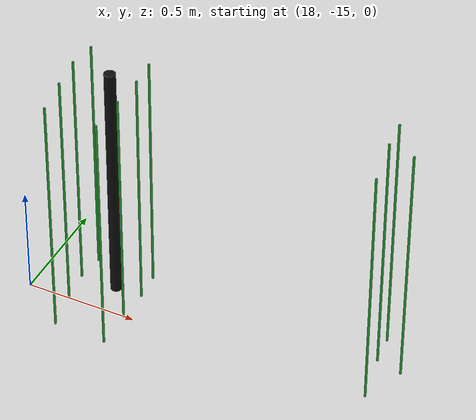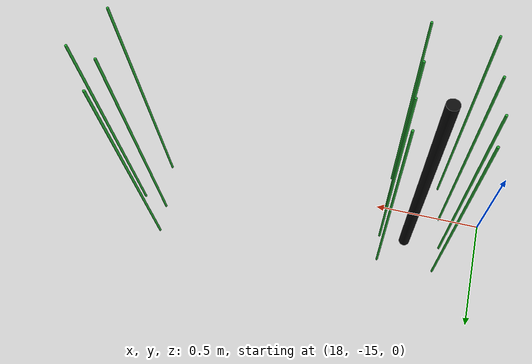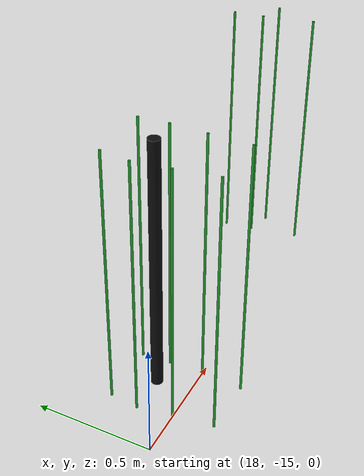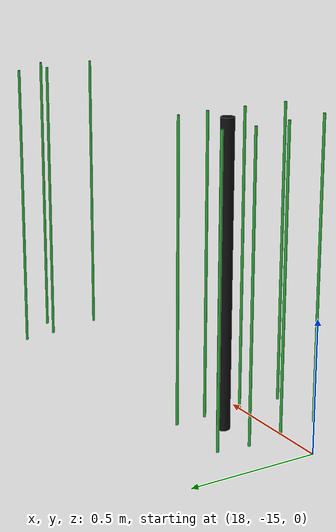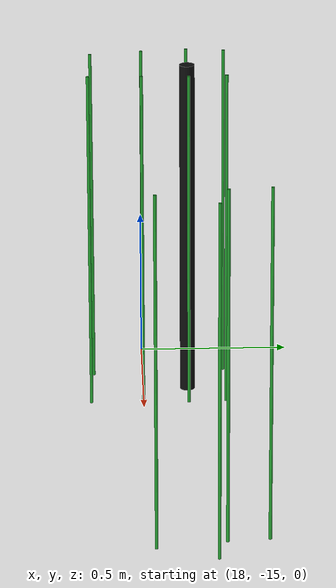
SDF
<sdf version="1.6">
 <world name="default">
  <model name="pole_19">
   <static>1</static>
   <pose>18.34 -14.85 0.575 0 -0 0</pose>
   <link name="link">
    <collision name="collision">
     <geometry><cylinder><length>1.15</length><radius>0.025</radius></cylinder></geometry>
    </collision>
    <visual name="visual">
     <geometry><cylinder><length>1.15</length><radius>0.025</radius></cylinder></geometry>
     <material>
      <script><uri>file://media/materials/scripts/gazebo.material</uri><name>Gazebo/Chrome</name></script>
      <shader type="vertex"><normal_map>__default__</normal_map></shader>
      <emissive>0.1 0.1 0.1 1</emissive>
      <specular>0.01 0.01 0.01 1</specular>
      <ambient>0.5 0.5 0.5 1</ambient>
      <diffuse>0.05 0.05 0.05 1</diffuse>
     </material>
    </visual>
   </link>
  </model>
  <model name="pole_27_clone_clone_6">
   <link name="link">
    <inertial>
     <mass>1</mass>
     <inertia><ixx>1</ixx><ixy>0</ixy><ixz>0</ixz><iyy>1</iyy><iyz>0</iyz><izz>1</izz></inertia>
    </inertial>
    <visual name="visual">
     <geometry><cylinder><length>1.15</length><radius>0.005</radius></cylinder></geometry>
     <material>
      <script><uri>file://media/materials/scripts/gazebo.material</uri><name>Gazebo/Green</name></script>
      <shader type="vertex"><normal_map>__default__</normal_map></shader>
      <emissive>0 0.1 0 1</emissive>
      <specular>0 0.01 0 1</specular>
      <ambient>0 0.5 0 1</ambient>
      <diffuse>0 0.05 0 1</diffuse>
     </material>
    </visual>
    <collision name="collision">
     <geometry><cylinder><radius>0.005</radius><length>1.15</length></cylinder></geometry>
     <surface>
      <friction>
       <ode><mu>1</mu><mu2>1</mu2><fdir1>0 0 0</fdir1><slip1>0</slip1><slip2>0</slip2></ode>
       <torsional>
        <coefficient>1</coefficient>
        <patch_radius>0</patch_radius>
        <surface_radius>0</surface_radius>
        <use_patch_radius>1</use_patch_radius>
        <ode><slip>0</slip></ode>
       </torsional>
      </friction>
      <bounce><restitution_coefficient>0</restitution_coefficient><threshold>1e+06</threshold></bounce>
      <contact>
       <collide_without_contact>0</collide_without_contact>
       <collide_without_contact_bitmask>1</collide_without_contact_bitmask>
       <collide_bitmask>1</collide_bitmask>
       <ode>
        <soft_cfm>0</soft_cfm>
        <soft_erp>0.2</soft_erp>
        <kp>1e+13</kp>
        <kd>1</kd>
        <max_vel>0.01</max_vel>
        <min_depth>0</min_depth>
       </ode>
       <bullet>
        <split_impulse>1</split_impulse>
        <split_impulse_penetration_threshold>-0.01</split_impulse_penetration_threshold>
        <soft_cfm>0</soft_cfm>
        <soft_erp>0.2</soft_erp>
        <kp>1e+13</kp>
        <kd>1</kd>
       </bullet>
      </contact>
     </surface>
    </collision>
   </link>
   <static>1</static>
   <pose>18.1699 -14.8479 0.575 0 -0 0</pose>
  </model>
  <model name="pole_27_clone_clone_7">
   <link name="link">
    <inertial>
     <mass>1</mass>
     <inertia><ixx>1</ixx><ixy>0</ixy><ixz>0</ixz><iyy>1</iyy><iyz>0</iyz><izz>1</izz></inertia>
    </inertial>
    <visual name="visual">
     <geometry><cylinder><length>1.15</length><radius>0.005</radius></cylinder></geometry>
     <material>
      <script><uri>file://media/materials/scripts/gazebo.material</uri><name>Gazebo/Green</name></script>
      <shader type="vertex"><normal_map>__default__</normal_map></shader>
      <emissive>0 0.1 0 1</emissive>
      <specular>0 0.01 0 1</specular>
      <ambient>0 0.5 0 1</ambient>
      <diffuse>0 0.05 0 1</diffuse>
     </material>
    </visual>
    <collision name="collision">
     <geometry><cylinder><radius>0.005</radius><length>1.15</length></cylinder></geometry>
     <surface>
      <friction>
       <ode><mu>1</mu><mu2>1</mu2><fdir1>0 0 0</fdir1><slip1>0</slip1><slip2>0</slip2></ode>
       <torsional>
        <coefficient>1</coefficient>
        <patch_radius>0</patch_radius>
        <surface_radius>0</surface_radius>
        <use_patch_radius>1</use_patch_radius>
        <ode><slip>0</slip></ode>
       </torsional>
      </friction>
      <bounce><restitution_coefficient>0</restitution_coefficient><threshold>1e+06</threshold></bounce>
      <contact>
       <collide_without_contact>0</collide_without_contact>
       <collide_without_contact_bitmask>1</collide_without_contact_bitmask>
       <collide_bitmask>1</collide_bitmask>
       <ode>
        <soft_cfm>0</soft_cfm>
        <soft_erp>0.2</soft_erp>
        <kp>1e+13</kp>
        <kd>1</kd>
        <max_vel>0.01</max_vel>
        <min_depth>0</min_depth>
       </ode>
       <bullet>
        <split_impulse>1</split_impulse>
        <split_impulse_penetration_threshold>-0.01</split_impulse_penetration_threshold>
        <soft_cfm>0</soft_cfm>
        <soft_erp>0.2</soft_erp>
        <kp>1e+13</kp>
        <kd>1</kd>
       </bullet>
      </contact>
     </surface>
    </collision>
   </link>
   <static>1</static>
   <pose>18.1851 -14.7239 0.575 0 -0 0</pose>
  </model>
  <model name="pole_27_clone_clone_8">
   <link name="link">
    <inertial>
     <mass>1</mass>
     <inertia><ixx>1</ixx><ixy>0</ixy><ixz>0</ixz><iyy>1</iyy><iyz>0</iyz><izz>1</izz></inertia>
    </inertial>
    <visual name="visual">
     <geometry><cylinder><length>1.15</length><radius>0.005</radius></cylinder></geometry>
     <material>
      <script><uri>file://media/materials/scripts/gazebo.material</uri><name>Gazebo/Green</name></script>
      <shader type="vertex"><normal_map>__default__</normal_map></shader>
      <emissive>0 0.1 0 1</emissive>
      <specular>0 0.01 0 1</specular>
      <ambient>0 0.5 0 1</ambient>
      <diffuse>0 0.05 0 1</diffuse>
     </material>
    </visual>
    <collision name="collision">
     <geometry><cylinder><radius>0.005</radius><length>1.15</length></cylinder></geometry>
     <surface>
      <friction>
       <ode><mu>1</mu><mu2>1</mu2><fdir1>0 0 0</fdir1><slip1>0</slip1><slip2>0</slip2></ode>
       <torsional>
        <coefficient>1</coefficient>
        <patch_radius>0</patch_radius>
        <surface_radius>0</surface_radius>
        <use_patch_radius>1</use_patch_radius>
        <ode><slip>0</slip></ode>
       </torsional>
      </friction>
      <bounce><restitution_coefficient>0</restitution_coefficient><threshold>1e+06</threshold></bounce>
      <contact>
       <collide_without_contact>0</collide_without_contact>
       <collide_without_contact_bitmask>1</collide_without_contact_bitmask>
       <collide_bitmask>1</collide_bitmask>
       <ode>
        <soft_cfm>0</soft_cfm>
        <soft_erp>0.2</soft_erp>
        <kp>1e+13</kp>
        <kd>1</kd>
        <max_vel>0.01</max_vel>
        <min_depth>0</min_depth>
       </ode>
       <bullet>
        <split_impulse>1</split_impulse>
        <split_impulse_penetration_threshold>-0.01</split_impulse_penetration_threshold>
        <soft_cfm>0</soft_cfm>
        <soft_erp>0.2</soft_erp>
        <kp>1e+13</kp>
        <kd>1</kd>
       </bullet>
      </contact>
     </surface>
    </collision>
   </link>
   <static>1</static>
   <pose>18.1901 -14.9979 0.575 0 -0 0</pose>
  </model>
  <model name="pole_27_clone_clone_10">
   <link name="link">
    <inertial>
     <mass>1</mass>
     <inertia><ixx>1</ixx><ixy>0</ixy><ixz>0</ixz><iyy>1</iyy><iyz>0</iyz><izz>1</izz></inertia>
    </inertial>
    <visual name="visual">
     <geometry><cylinder><length>1.15</length><radius>0.005</radius></cylinder></geometry>
     <material>
      <script><uri>file://media/materials/scripts/gazebo.material</uri><name>Gazebo/Green</name></script>
      <shader type="vertex"><normal_map>__default__</normal_map></shader>
      <emissive>0 0.1 0 1</emissive>
      <specular>0 0.01 0 1</specular>
      <ambient>0 0.5 0 1</ambient>
      <diffuse>0 0.05 0 1</diffuse>
     </material>
    </visual>
    <collision name="collision">
     <geometry><cylinder><radius>0.005</radius><length>1.15</length></cylinder></geometry>
     <surface>
      <friction>
       <ode><mu>1</mu><mu2>1</mu2><fdir1>0 0 0</fdir1><slip1>0</slip1><slip2>0</slip2></ode>
       <torsional>
        <coefficient>1</coefficient>
        <patch_radius>0</patch_radius>
        <surface_radius>0</surface_radius>
        <use_patch_radius>1</use_patch_radius>
        <ode><slip>0</slip></ode>
       </torsional>
      </friction>
      <bounce><restitution_coefficient>0</restitution_coefficient><threshold>1e+06</threshold></bounce>
      <contact>
       <collide_without_contact>0</collide_without_contact>
       <collide_without_contact_bitmask>1</collide_without_contact_bitmask>
       <collide_bitmask>1</collide_bitmask>
       <ode>
        <soft_cfm>0</soft_cfm>
        <soft_erp>0.2</soft_erp>
        <kp>1e+13</kp>
        <kd>1</kd>
        <max_vel>0.01</max_vel>
        <min_depth>0</min_depth>
       </ode>
       <bullet>
        <split_impulse>1</split_impulse>
        <split_impulse_penetration_threshold>-0.01</split_impulse_penetration_threshold>
        <soft_cfm>0</soft_cfm>
        <soft_erp>0.2</soft_erp>
        <kp>1e+13</kp>
        <kd>1</kd>
       </bullet>
      </contact>
     </surface>
    </collision>
   </link>
   <static>1</static>
   <pose>18.2179 -15.1665 0.575 0 -0 0</pose>
  </model>
  <model name="pole_27_clone_clone_11">
   <link name="link">
    <inertial>
     <mass>1</mass>
     <inertia><ixx>1</ixx><ixy>0</ixy><ixz>0</ixz><iyy>1</iyy><iyz>0</iyz><izz>1</izz></inertia>
    </inertial>
    <visual name="visual">
     <geometry><cylinder><length>1.15</length><radius>0.005</radius></cylinder></geometry>
     <material>
      <script><uri>file://media/materials/scripts/gazebo.material</uri><name>Gazebo/Green</name></script>
      <shader type="vertex"><normal_map>__default__</normal_map></shader>
      <emissive>0 0.1 0 1</emissive>
      <specular>0 0.01 0 1</specular>
      <ambient>0 0.5 0 1</ambient>
      <diffuse>0 0.05 0 1</diffuse>
     </material>
    </visual>
    <collision name="collision">
     <geometry><cylinder><radius>0.005</radius><length>1.15</length></cylinder></geometry>
     <surface>
      <friction>
       <ode><mu>1</mu><mu2>1</mu2><fdir1>0 0 0</fdir1><slip1>0</slip1><slip2>0</slip2></ode>
       <torsional>
        <coefficient>1</coefficient>
        <patch_radius>0</patch_radius>
        <surface_radius>0</surface_radius>
        <use_patch_radius>1</use_patch_radius>
        <ode><slip>0</slip></ode>
       </torsional>
      </friction>
      <bounce><restitution_coefficient>0</restitution_coefficient><threshold>1e+06</threshold></bounce>
      <contact>
       <collide_without_contact>0</collide_without_contact>
       <collide_without_contact_bitmask>1</collide_without_contact_bitmask>
       <collide_bitmask>1</collide_bitmask>
       <ode>
        <soft_cfm>0</soft_cfm>
        <soft_erp>0.2</soft_erp>
        <kp>1e+13</kp>
        <kd>1</kd>
        <max_vel>0.01</max_vel>
        <min_depth>0</min_depth>
       </ode>
       <bullet>
        <split_impulse>1</split_impulse>
        <split_impulse_penetration_threshold>-0.01</split_impulse_penetration_threshold>
        <soft_cfm>0</soft_cfm>
        <soft_erp>0.2</soft_erp>
        <kp>1e+13</kp>
        <kd>1</kd>
       </bullet>
      </contact>
     </surface>
    </collision>
   </link>
   <static>1</static>
   <pose>18.4612 -14.8483 0.575 0 -0 0</pose>
  </model>
  <model name="pole_27_clone_clone_12">
   <link name="link">
    <inertial>
     <mass>1</mass>
     <inertia><ixx>1</ixx><ixy>0</ixy><ixz>0</ixz><iyy>1</iyy><iyz>0</iyz><izz>1</izz></inertia>
    </inertial>
    <visual name="visual">
     <geometry><cylinder><length>1.15</length><radius>0.005</radius></cylinder></geometry>
     <material>
      <script><uri>file://media/materials/scripts/gazebo.material</uri><name>Gazebo/Green</name></script>
      <shader type="vertex"><normal_map>__default__</normal_map></shader>
      <emissive>0 0.1 0 1</emissive>
      <specular>0 0.01 0 1</specular>
      <ambient>0 0.5 0 1</ambient>
      <diffuse>0 0.05 0 1</diffuse>
     </material>
    </visual>
    <collision name="collision">
     <geometry><cylinder><radius>0.005</radius><length>1.15</length></cylinder></geometry>
     <surface>
      <friction>
       <ode><mu>1</mu><mu2>1</mu2><fdir1>0 0 0</fdir1><slip1>0</slip1><slip2>0</slip2></ode>
       <torsional>
        <coefficient>1</coefficient>
        <patch_radius>0</patch_radius>
        <surface_radius>0</surface_radius>
        <use_patch_radius>1</use_patch_radius>
        <ode><slip>0</slip></ode>
       </torsional>
      </friction>
      <bounce><restitution_coefficient>0</restitution_coefficient><threshold>1e+06</threshold></bounce>
      <contact>
       <collide_without_contact>0</collide_without_contact>
       <collide_without_contact_bitmask>1</collide_without_contact_bitmask>
       <collide_bitmask>1</collide_bitmask>
       <ode>
        <soft_cfm>0</soft_cfm>
        <soft_erp>0.2</soft_erp>
        <kp>1e+13</kp>
        <kd>1</kd>
        <max_vel>0.01</max_vel>
        <min_depth>0</min_depth>
       </ode>
       <bullet>
        <split_impulse>1</split_impulse>
        <split_impulse_penetration_threshold>-0.01</split_impulse_penetration_threshold>
        <soft_cfm>0</soft_cfm>
        <soft_erp>0.2</soft_erp>
        <kp>1e+13</kp>
        <kd>1</kd>
       </bullet>
      </contact>
     </surface>
    </collision>
   </link>
   <static>1</static>
   <pose>18.4523 -14.7235 0.575 0 -0 0</pose>
  </model>
  <model name="pole_27_clone_clone_14">
   <link name="link">
    <inertial>
     <mass>1</mass>
     <inertia><ixx>1</ixx><ixy>0</ixy><ixz>0</ixz><iyy>1</iyy><iyz>0</iyz><izz>1</izz></inertia>
    </inertial>
    <visual name="visual">
     <geometry><cylinder><length>1.15</length><radius>0.005</radius></cylinder></geometry>
     <material>
      <script><uri>file://media/materials/scripts/gazebo.material</uri><name>Gazebo/Green</name></script>
      <shader type="vertex"><normal_map>__default__</normal_map></shader>
      <emissive>0 0.1 0 1</emissive>
      <specular>0 0.01 0 1</specular>
      <ambient>0 0.5 0 1</ambient>
      <diffuse>0 0.05 0 1</diffuse>
     </material>
    </visual>
    <collision name="collision">
     <geometry><cylinder><radius>0.005</radius><length>1.15</length></cylinder></geometry>
     <surface>
      <friction>
       <ode><mu>1</mu><mu2>1</mu2><fdir1>0 0 0</fdir1><slip1>0</slip1><slip2>0</slip2></ode>
       <torsional>
        <coefficient>1</coefficient>
        <patch_radius>0</patch_radius>
        <surface_radius>0</surface_radius>
        <use_patch_radius>1</use_patch_radius>
        <ode><slip>0</slip></ode>
       </torsional>
      </friction>
      <bounce><restitution_coefficient>0</restitution_coefficient><threshold>1e+06</threshold></bounce>
      <contact>
       <collide_without_contact>0</collide_without_contact>
       <collide_without_contact_bitmask>1</collide_without_contact_bitmask>
       <collide_bitmask>1</collide_bitmask>
       <ode>
        <soft_cfm>0</soft_cfm>
        <soft_erp>0.2</soft_erp>
        <kp>1e+13</kp>
        <kd>1</kd>
        <max_vel>0.01</max_vel>
        <min_depth>0</min_depth>
       </ode>
       <bullet>
        <split_impulse>1</split_impulse>
        <split_impulse_penetration_threshold>-0.01</split_impulse_penetration_threshold>
        <soft_cfm>0</soft_cfm>
        <soft_erp>0.2</soft_erp>
        <kp>1e+13</kp>
        <kd>1</kd>
       </bullet>
      </contact>
     </surface>
    </collision>
   </link>
   <static>1</static>
   <pose>18.4569 -15.0012 0.575 0 -0 0</pose>
  </model>
  <model name="pole_27_clone_clone_15">
   <link name="link">
    <inertial>
     <mass>1</mass>
     <inertia><ixx>1</ixx><ixy>0</ixy><ixz>0</ixz><iyy>1</iyy><iyz>0</iyz><izz>1</izz></inertia>
    </inertial>
    <visual name="visual">
     <geometry><cylinder><length>1.15</length><radius>0.005</radius></cylinder></geometry>
     <material>
      <script><uri>file://media/materials/scripts/gazebo.material</uri><name>Gazebo/Green</name></script>
      <shader type="vertex"><normal_map>__default__</normal_map></shader>
      <emissive>0 0.1 0 1</emissive>
      <specular>0 0.01 0 1</specular>
      <ambient>0 0.5 0 1</ambient>
      <diffuse>0 0.05 0 1</diffuse>
     </material>
    </visual>
    <collision name="collision">
     <geometry><cylinder><radius>0.005</radius><length>1.15</length></cylinder></geometry>
     <surface>
      <friction>
       <ode><mu>1</mu><mu2>1</mu2><fdir1>0 0 0</fdir1><slip1>0</slip1><slip2>0</slip2></ode>
       <torsional>
        <coefficient>1</coefficient>
        <patch_radius>0</patch_radius>
        <surface_radius>0</surface_radius>
        <use_patch_radius>1</use_patch_radius>
        <ode><slip>0</slip></ode>
       </torsional>
      </friction>
      <bounce><restitution_coefficient>0</restitution_coefficient><threshold>1e+06</threshold></bounce>
      <contact>
       <collide_without_contact>0</collide_without_contact>
       <collide_without_contact_bitmask>1</collide_without_contact_bitmask>
       <collide_bitmask>1</collide_bitmask>
       <ode>
        <soft_cfm>0</soft_cfm>
        <soft_erp>0.2</soft_erp>
        <kp>1e+13</kp>
        <kd>1</kd>
        <max_vel>0.01</max_vel>
        <min_depth>0</min_depth>
       </ode>
       <bullet>
        <split_impulse>1</split_impulse>
        <split_impulse_penetration_threshold>-0.01</split_impulse_penetration_threshold>
        <soft_cfm>0</soft_cfm>
        <soft_erp>0.2</soft_erp>
        <kp>1e+13</kp>
        <kd>1</kd>
       </bullet>
      </contact>
     </surface>
    </collision>
   </link>
   <static>1</static>
   <pose>18.4555 -15.1755 0.575 0 -0 0</pose>
  </model>
  <model name="pole_27_clone_clone_94">
   <link name="link">
    <inertial>
     <mass>1</mass>
     <inertia><ixx>1</ixx><ixy>0</ixy><ixz>0</ixz><iyy>1</iyy><iyz>0</iyz><izz>1</izz></inertia>
    </inertial>
    <visual name="visual">
     <geometry><cylinder><length>1.15</length><radius>0.005</radius></cylinder></geometry>
     <material>
      <script><uri>file://media/materials/scripts/gazebo.material</uri><name>Gazebo/Green</name></script>
      <shader type="vertex"><normal_map>__default__</normal_map></shader>
      <emissive>0 0.1 0 1</emissive>
      <specular>0 0.01 0 1</specular>
      <ambient>0 0.5 0 1</ambient>
      <diffuse>0 0.05 0 1</diffuse>
     </material>
    </visual>
    <collision name="collision">
     <geometry><cylinder><radius>0.005</radius><length>1.15</length></cylinder></geometry>
     <surface>
      <friction>
       <ode><mu>1</mu><mu2>1</mu2><fdir1>0 0 0</fdir1><slip1>0</slip1><slip2>0</slip2></ode>
       <torsional>
        <coefficient>1</coefficient>
        <patch_radius>0</patch_radius>
        <surface_radius>0</surface_radius>
        <use_patch_radius>1</use_patch_radius>
        <ode><slip>0</slip></ode>
       </torsional>
      </friction>
      <bounce><restitution_coefficient>0</restitution_coefficient><threshold>1e+06</threshold></bounce>
      <contact>
       <collide_without_contact>0</collide_without_contact>
       <collide_without_contact_bitmask>1</collide_without_contact_bitmask>
       <collide_bitmask>1</collide_bitmask>
       <ode>
        <soft_cfm>0</soft_cfm>
        <soft_erp>0.2</soft_erp>
        <kp>1e+13</kp>
        <kd>1</kd>
        <max_vel>0.01</max_vel>
        <min_depth>0</min_depth>
       </ode>
       <bullet>
        <split_impulse>1</split_impulse>
        <split_impulse_penetration_threshold>-0.01</split_impulse_penetration_threshold>
        <soft_cfm>0</soft_cfm>
        <soft_erp>0.2</soft_erp>
        <kp>1e+13</kp>
        <kd>1</kd>
       </bullet>
      </contact>
     </surface>
    </collision>
   </link>
   <static>1</static>
   <pose>19.5178 -14.6333 0.575 0 -0 0</pose>
  </model>
  <model name="pole_27_clone_clone_101">
   <link name="link">
    <inertial>
     <mass>1</mass>
     <inertia><ixx>1</ixx><ixy>0</ixy><ixz>0</ixz><iyy>1</iyy><iyz>0</iyz><izz>1</izz></inertia>
    </inertial>
    <visual name="visual">
     <geometry><cylinder><length>1.15</length><radius>0.005</radius></cylinder></geometry>
     <material>
      <script><uri>file://media/materials/scripts/gazebo.material</uri><name>Gazebo/Green</name></script>
      <shader type="vertex"><normal_map>__default__</normal_map></shader>
      <emissive>0 0.1 0 1</emissive>
      <specular>0 0.01 0 1</specular>
      <ambient>0 0.5 0 1</ambient>
      <diffuse>0 0.05 0 1</diffuse>
     </material>
    </visual>
    <collision name="collision">
     <geometry><cylinder><radius>0.005</radius><length>1.15</length></cylinder></geometry>
     <surface>
      <friction>
       <ode><mu>1</mu><mu2>1</mu2><fdir1>0 0 0</fdir1><slip1>0</slip1><slip2>0</slip2></ode>
       <torsional>
        <coefficient>1</coefficient>
        <patch_radius>0</patch_radius>
        <surface_radius>0</surface_radius>
        <use_patch_radius>1</use_patch_radius>
        <ode><slip>0</slip></ode>
       </torsional>
      </friction>
      <bounce><restitution_coefficient>0</restitution_coefficient><threshold>1e+06</threshold></bounce>
      <contact>
       <collide_without_contact>0</collide_without_contact>
       <collide_without_contact_bitmask>1</collide_without_contact_bitmask>
       <collide_bitmask>1</collide_bitmask>
       <ode>
        <soft_cfm>0</soft_cfm>
        <soft_erp>0.2</soft_erp>
        <kp>1e+13</kp>
        <kd>1</kd>
        <max_vel>0.01</max_vel>
        <min_depth>0</min_depth>
       </ode>
       <bullet>
        <split_impulse>1</split_impulse>
        <split_impulse_penetration_threshold>-0.01</split_impulse_penetration_threshold>
        <soft_cfm>0</soft_cfm>
        <soft_erp>0.2</soft_erp>
        <kp>1e+13</kp>
        <kd>1</kd>
       </bullet>
      </contact>
     </surface>
    </collision>
   </link>
   <static>1</static>
   <pose>19.6493 -14.7947 0.575 0 -0 0</pose>
  </model>
  <model name="pole_27_clone_clone_102">
   <link name="link">
    <inertial>
     <mass>1</mass>
     <inertia><ixx>1</ixx><ixy>0</ixy><ixz>0</ixz><iyy>1</iyy><iyz>0</iyz><izz>1</izz></inertia>
    </inertial>
    <visual name="visual">
     <geometry><cylinder><length>1.15</length><radius>0.005</radius></cylinder></geometry>
     <material>
      <script><uri>file://media/materials/scripts/gazebo.material</uri><name>Gazebo/Green</name></script>
      <shader type="vertex"><normal_map>__default__</normal_map></shader>
      <emissive>0 0.1 0 1</emissive>
      <specular>0 0.01 0 1</specular>
      <ambient>0 0.5 0 1</ambient>
      <diffuse>0 0.05 0 1</diffuse>
     </material>
    </visual>
    <collision name="collision">
     <geometry><cylinder><radius>0.005</radius><length>1.15</length></cylinder></geometry>
     <surface>
      <friction>
       <ode><mu>1</mu><mu2>1</mu2><fdir1>0 0 0</fdir1><slip1>0</slip1><slip2>0</slip2></ode>
       <torsional>
        <coefficient>1</coefficient>
        <patch_radius>0</patch_radius>
        <surface_radius>0</surface_radius>
        <use_patch_radius>1</use_patch_radius>
        <ode><slip>0</slip></ode>
       </torsional>
      </friction>
      <bounce><restitution_coefficient>0</restitution_coefficient><threshold>1e+06</threshold></bounce>
      <contact>
       <collide_without_contact>0</collide_without_contact>
       <collide_without_contact_bitmask>1</collide_without_contact_bitmask>
       <collide_bitmask>1</collide_bitmask>
       <ode>
        <soft_cfm>0</soft_cfm>
        <soft_erp>0.2</soft_erp>
        <kp>1e+13</kp>
        <kd>1</kd>
        <max_vel>0.01</max_vel>
        <min_depth>0</min_depth>
       </ode>
       <bullet>
        <split_impulse>1</split_impulse>
        <split_impulse_penetration_threshold>-0.01</split_impulse_penetration_threshold>
        <soft_cfm>0</soft_cfm>
        <soft_erp>0.2</soft_erp>
        <kp>1e+13</kp>
        <kd>1</kd>
       </bullet>
      </contact>
     </surface>
    </collision>
   </link>
   <static>1</static>
   <pose>19.5315 -14.7643 0.575 0 -0 0</pose>
  </model>
  <model name="pole_27_clone_clone_104">
   <link name="link">
    <inertial>
     <mass>1</mass>
     <inertia><ixx>1</ixx><ixy>0</ixy><ixz>0</ixz><iyy>1</iyy><iyz>0</iyz><izz>1</izz></inertia>
    </inertial>
    <visual name="visual">
     <geometry><cylinder><length>1.15</length><radius>0.005</radius></cylinder></geometry>
     <material>
      <script><uri>file://media/materials/scripts/gazebo.material</uri><name>Gazebo/Green</name></script>
      <shader type="vertex"><normal_map>__default__</normal_map></shader>
      <emissive>0 0.1 0 1</emissive>
      <specular>0 0.01 0 1</specular>
      <ambient>0 0.5 0 1</ambient>
      <diffuse>0 0.05 0 1</diffuse>
     </material>
    </visual>
    <collision name="collision">
     <geometry><cylinder><radius>0.005</radius><length>1.15</length></cylinder></geometry>
     <surface>
      <friction>
       <ode><mu>1</mu><mu2>1</mu2><fdir1>0 0 0</fdir1><slip1>0</slip1><slip2>0</slip2></ode>
       <torsional>
        <coefficient>1</coefficient>
        <patch_radius>0</patch_radius>
        <surface_radius>0</surface_radius>
        <use_patch_radius>1</use_patch_radius>
        <ode><slip>0</slip></ode>
       </torsional>
      </friction>
      <bounce><restitution_coefficient>0</restitution_coefficient><threshold>1e+06</threshold></bounce>
      <contact>
       <collide_without_contact>0</collide_without_contact>
       <collide_without_contact_bitmask>1</collide_without_contact_bitmask>
       <collide_bitmask>1</collide_bitmask>
       <ode>
        <soft_cfm>0</soft_cfm>
        <soft_erp>0.2</soft_erp>
        <kp>1e+13</kp>
        <kd>1</kd>
        <max_vel>0.01</max_vel>
        <min_depth>0</min_depth>
       </ode>
       <bullet>
        <split_impulse>1</split_impulse>
        <split_impulse_penetration_threshold>-0.01</split_impulse_penetration_threshold>
        <soft_cfm>0</soft_cfm>
        <soft_erp>0.2</soft_erp>
        <kp>1e+13</kp>
        <kd>1</kd>
       </bullet>
      </contact>
     </surface>
    </collision>
   </link>
   <static>1</static>
   <pose>19.573 -14.9837 0.575 0 -0 0</pose>
  </model>
 </world>
</sdf>
